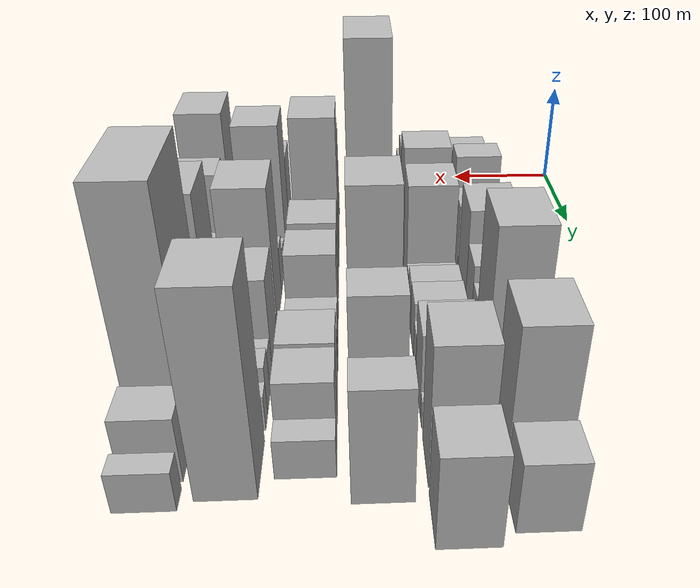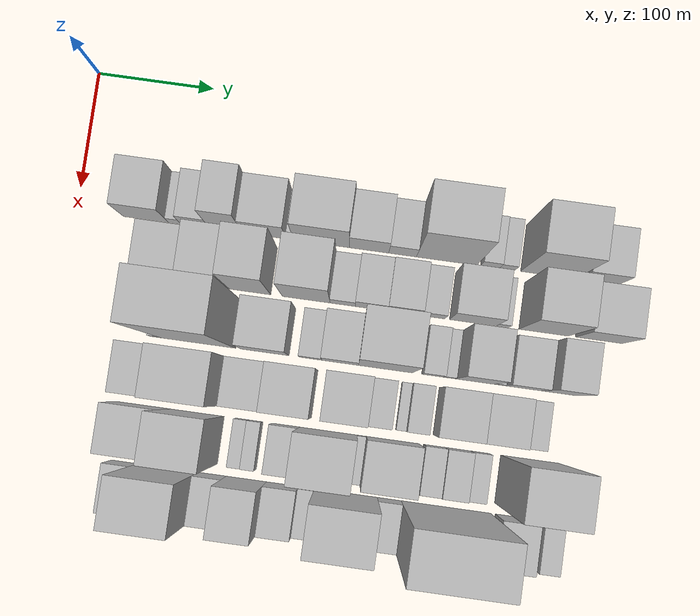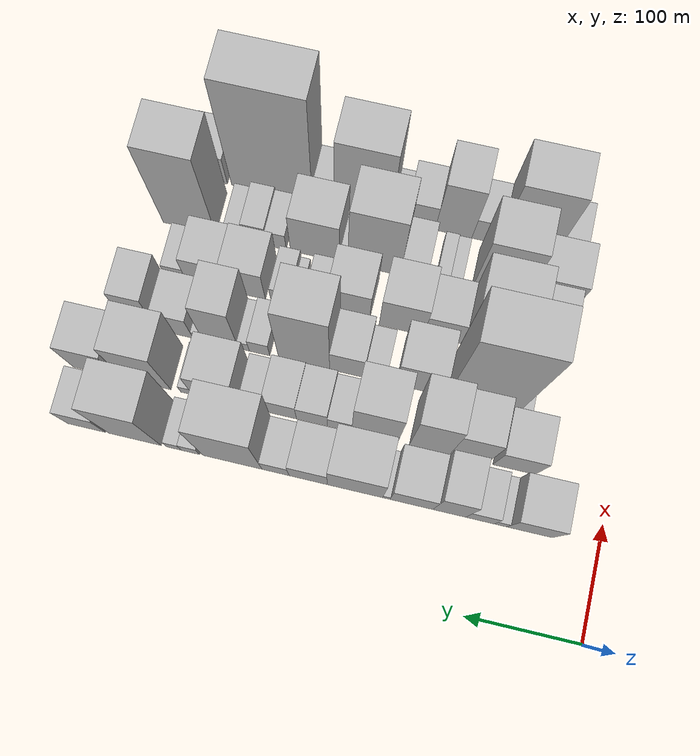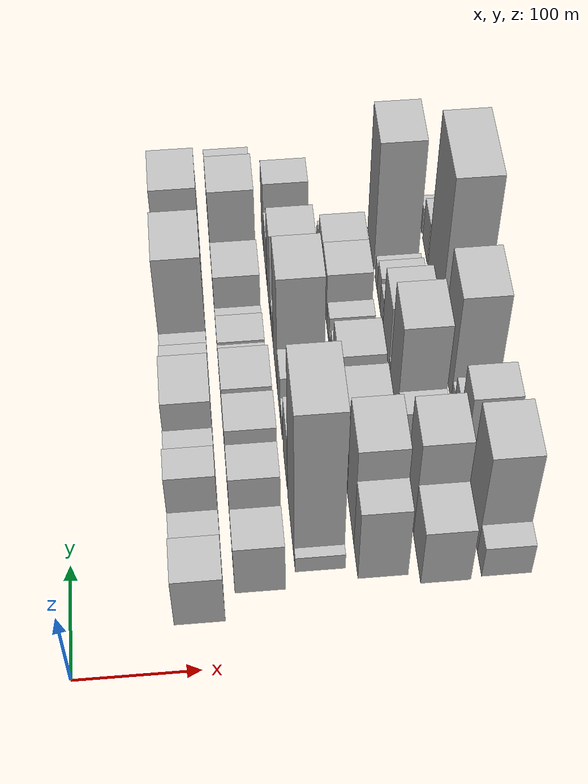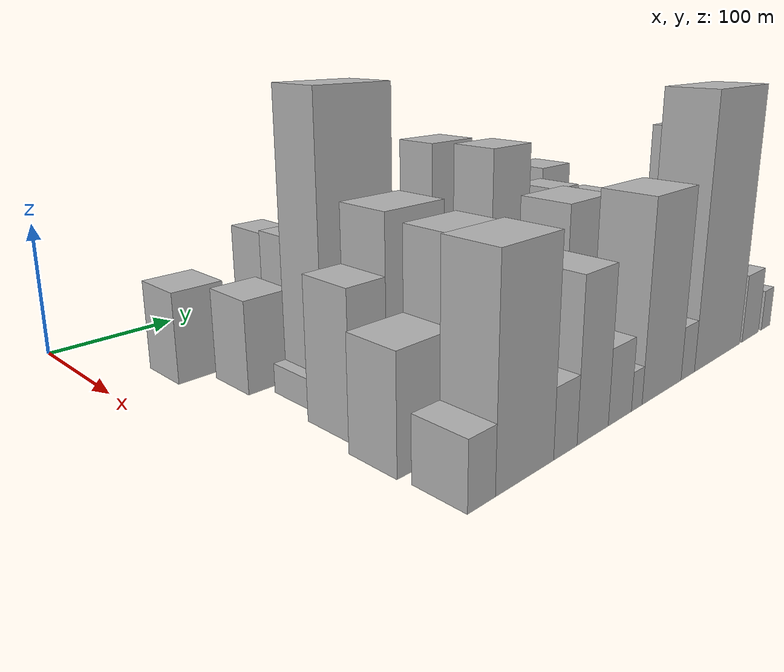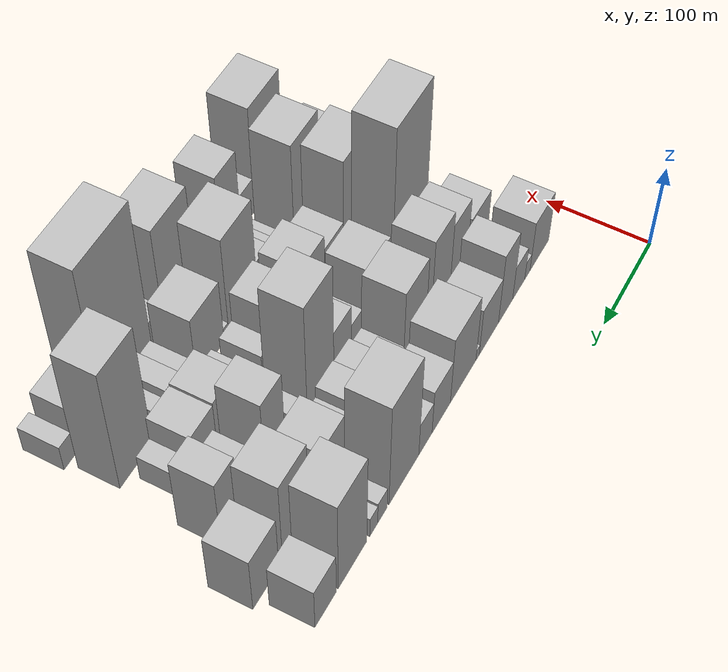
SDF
<sdf version="1.6">
 <world name="default">
  <model name="building_29">
   <static>1</static>
   <pose>100.0000 59.5976 0 0.000000 0.000000 0.000000</pose>
   <link name="link">
    <pose>0 0 33.00 0 0 0</pose>
    <collision name="collision"><geometry><box><size>40.0000 39.1133 66.0000</size></box></geometry></collision>
    <visual name="visual">
     <cast_shadows>0</cast_shadows>
     <geometry><box><size>40.0000 39.1133 66.0000</size></box></geometry>
     <material>
      <script>
       <uri>model://HANNAS_wall/materials/scripts</uri>
       <uri>model://HANNAS_wall/materials/textures</uri>
       <name>vrc/HANNAS_wall</name>
      </script>
     </material>
    </visual>
   </link>
  </model>
  <model name="building_30">
   <static>1</static>
   <pose>100.0000 84.5505 0 0.000000 0.000000 0.000000</pose>
   <link name="link">
    <pose>0 0 12.00 0 0 0</pose>
    <collision name="collision"><geometry><box><size>40.0000 10.7926 24.0000</size></box></geometry></collision>
    <visual name="visual">
     <cast_shadows>0</cast_shadows>
     <geometry><box><size>40.0000 10.7926 24.0000</size></box></geometry>
     <material>
      <script>
       <uri>model://HANNAS_wall/materials/scripts</uri>
       <uri>model://HANNAS_wall/materials/textures</uri>
       <name>vrc/HANNAS_wall</name>
      </script>
     </material>
    </visual>
   </link>
  </model>
  <model name="building_31">
   <static>1</static>
   <pose>100.0000 102.2200 0 0.000000 0.000000 0.000000</pose>
   <link name="link">
    <pose>0 0 22.50 0 0 0</pose>
    <collision name="collision"><geometry><box><size>40.0000 24.5463 45.0000</size></box></geometry></collision>
    <visual name="visual">
     <cast_shadows>0</cast_shadows>
     <geometry><box><size>40.0000 24.5463 45.0000</size></box></geometry>
     <material>
      <script>
       <uri>model://HANNAS_wall/materials/scripts</uri>
       <uri>model://HANNAS_wall/materials/textures</uri>
       <name>vrc/HANNAS_wall</name>
      </script>
     </material>
    </visual>
   </link>
  </model>
  <model name="building_32">
   <static>1</static>
   <pose>100.0000 128.6464 0 0.000000 0.000000 0.000000</pose>
   <link name="link">
    <pose>0 0 46.50 0 0 0</pose>
    <collision name="collision"><geometry><box><size>40.0000 28.3064 93.0000</size></box></geometry></collision>
    <visual name="visual">
     <cast_shadows>0</cast_shadows>
     <geometry><box><size>40.0000 28.3064 93.0000</size></box></geometry>
     <material>
      <script>
       <uri>model://HANNAS_wall/materials/scripts</uri>
       <uri>model://HANNAS_wall/materials/textures</uri>
       <name>vrc/HANNAS_wall</name>
      </script>
     </material>
    </visual>
   </link>
  </model>
  <model name="building_33">
   <static>1</static>
   <pose>100.0000 161.4105 0 0.000000 0.000000 0.000000</pose>
   <link name="link">
    <pose>0 0 31.50 0 0 0</pose>
    <collision name="collision"><geometry><box><size>40.0000 37.2217 63.0000</size></box></geometry></collision>
    <visual name="visual">
     <cast_shadows>0</cast_shadows>
     <geometry><box><size>40.0000 37.2217 63.0000</size></box></geometry>
     <material>
      <script>
       <uri>model://HANNAS_wall/materials/scripts</uri>
       <uri>model://HANNAS_wall/materials/textures</uri>
       <name>vrc/HANNAS_wall</name>
      </script>
     </material>
    </visual>
   </link>
  </model>
  <model name="building_34">
   <static>1</static>
   <pose>100.0000 183.2729 0 0.000000 0.000000 0.000000</pose>
   <link name="link">
    <pose>0 0 7.50 0 0 0</pose>
    <collision name="collision"><geometry><box><size>40.0000 6.5032 15.0000</size></box></geometry></collision>
    <visual name="visual">
     <cast_shadows>0</cast_shadows>
     <geometry><box><size>40.0000 6.5032 15.0000</size></box></geometry>
     <material>
      <script>
       <uri>model://HANNAS_wall/materials/scripts</uri>
       <uri>model://HANNAS_wall/materials/textures</uri>
       <name>vrc/HANNAS_wall</name>
      </script>
     </material>
    </visual>
   </link>
  </model>
  <model name="building_35">
   <static>1</static>
   <pose>100.0000 210.5609 0 0.000000 0.000000 0.000000</pose>
   <link name="link">
    <pose>0 0 45.00 0 0 0</pose>
    <collision name="collision"><geometry><box><size>40.0000 48.0727 90.0000</size></box></geometry></collision>
    <visual name="visual">
     <cast_shadows>0</cast_shadows>
     <geometry><box><size>40.0000 48.0727 90.0000</size></box></geometry>
     <material>
      <script>
       <uri>model://HANNAS_wall/materials/scripts</uri>
       <uri>model://HANNAS_wall/materials/textures</uri>
       <name>vrc/HANNAS_wall</name>
      </script>
     </material>
    </visual>
   </link>
  </model>
  <model name="building_36">
   <static>1</static>
   <pose>100.0000 251.3579 0 0.000000 0.000000 0.000000</pose>
   <link name="link">
    <pose>0 0 30.00 0 0 0</pose>
    <collision name="collision"><geometry><box><size>40.0000 33.5214 60.0000</size></box></geometry></collision>
    <visual name="visual">
     <cast_shadows>0</cast_shadows>
     <geometry><box><size>40.0000 33.5214 60.0000</size></box></geometry>
     <material>
      <script>
       <uri>model://HANNAS_wall/materials/scripts</uri>
       <uri>model://HANNAS_wall/materials/textures</uri>
       <name>vrc/HANNAS_wall</name>
      </script>
     </material>
    </visual>
   </link>
  </model>
  <model name="building_37">
   <static>1</static>
   <pose>100.0000 279.9803 0 0.000000 0.000000 0.000000</pose>
   <link name="link">
    <pose>0 0 22.50 0 0 0</pose>
    <collision name="collision"><geometry><box><size>40.0000 23.7235 45.0000</size></box></geometry></collision>
    <visual name="visual">
     <cast_shadows>0</cast_shadows>
     <geometry><box><size>40.0000 23.7235 45.0000</size></box></geometry>
     <material>
      <script>
       <uri>model://HANNAS_wall/materials/scripts</uri>
       <uri>model://HANNAS_wall/materials/textures</uri>
       <name>vrc/HANNAS_wall</name>
      </script>
     </material>
    </visual>
   </link>
  </model>
  <model name="building_38">
   <static>1</static>
   <pose>100.0000 317.8048 0 0.000000 0.000000 0.000000</pose>
   <link name="link">
    <pose>0 0 70.50 0 0 0</pose>
    <collision name="collision"><geometry><box><size>40.0000 51.9255 141.0000</size></box></geometry></collision>
    <visual name="visual">
     <cast_shadows>0</cast_shadows>
     <geometry><box><size>40.0000 51.9255 141.0000</size></box></geometry>
     <material>
      <script>
       <uri>model://HANNAS_wall/materials/scripts</uri>
       <uri>model://HANNAS_wall/materials/textures</uri>
       <name>vrc/HANNAS_wall</name>
      </script>
     </material>
    </visual>
   </link>
  </model>
  <model name="building_39">
   <static>1</static>
   <pose>100.0000 354.8430 0 0.000000 0.000000 0.000000</pose>
   <link name="link">
    <pose>0 0 15.00 0 0 0</pose>
    <collision name="collision"><geometry><box><size>40.0000 16.1508 30.0000</size></box></geometry></collision>
    <visual name="visual">
     <cast_shadows>0</cast_shadows>
     <geometry><box><size>40.0000 16.1508 30.0000</size></box></geometry>
     <material>
      <script>
       <uri>model://HANNAS_wall/materials/scripts</uri>
       <uri>model://HANNAS_wall/materials/textures</uri>
       <name>vrc/HANNAS_wall</name>
      </script>
     </material>
    </visual>
   </link>
  </model>
  <model name="building_40">
   <static>1</static>
   <pose>100.0000 369.5333 0 0.000000 0.000000 0.000000</pose>
   <link name="link">
    <pose>0 0 13.50 0 0 0</pose>
    <collision name="collision"><geometry><box><size>40.0000 13.2298 27.0000</size></box></geometry></collision>
    <visual name="visual">
     <cast_shadows>0</cast_shadows>
     <geometry><box><size>40.0000 13.2298 27.0000</size></box></geometry>
     <material>
      <script>
       <uri>model://HANNAS_wall/materials/scripts</uri>
       <uri>model://HANNAS_wall/materials/textures</uri>
       <name>vrc/HANNAS_wall</name>
      </script>
     </material>
    </visual>
   </link>
  </model>
  <model name="building_41">
   <static>1</static>
   <pose>100.0000 404.4747 0 0.000000 0.000000 0.000000</pose>
   <link name="link">
    <pose>0 0 63.00 0 0 0</pose>
    <collision name="collision"><geometry><box><size>40.0000 46.6530 126.0000</size></box></geometry></collision>
    <visual name="visual">
     <cast_shadows>0</cast_shadows>
     <geometry><box><size>40.0000 46.6530 126.0000</size></box></geometry>
     <material>
      <script>
       <uri>model://HANNAS_wall/materials/scripts</uri>
       <uri>model://HANNAS_wall/materials/textures</uri>
       <name>vrc/HANNAS_wall</name>
      </script>
     </material>
    </visual>
   </link>
  </model>
  <model name="building_42">
   <static>1</static>
   <pose>100.0000 447.7379 0 0.000000 0.000000 0.000000</pose>
   <link name="link">
    <pose>0 0 28.50 0 0 0</pose>
    <collision name="collision"><geometry><box><size>40.0000 33.8734 57.0000</size></box></geometry></collision>
    <visual name="visual">
     <cast_shadows>0</cast_shadows>
     <geometry><box><size>40.0000 33.8734 57.0000</size></box></geometry>
     <material>
      <script>
       <uri>model://HANNAS_wall/materials/scripts</uri>
       <uri>model://HANNAS_wall/materials/textures</uri>
       <name>vrc/HANNAS_wall</name>
      </script>
     </material>
    </visual>
   </link>
  </model>
  <model name="building_74">
   <static>1</static>
   <pose>149.0000 82.3184 0 0.000000 0.000000 0.000000</pose>
   <link name="link">
    <pose>0 0 33.00 0 0 0</pose>
    <collision name="collision"><geometry><box><size>40.0000 36.8420 66.0000</size></box></geometry></collision>
    <visual name="visual">
     <cast_shadows>0</cast_shadows>
     <geometry><box><size>40.0000 36.8420 66.0000</size></box></geometry>
     <material>
      <script>
       <uri>model://HANNAS_wall/materials/scripts</uri>
       <uri>model://HANNAS_wall/materials/textures</uri>
       <name>vrc/HANNAS_wall</name>
      </script>
     </material>
    </visual>
   </link>
  </model>
  <model name="building_75">
   <static>1</static>
   <pose>149.0000 122.0918 0 0.000000 0.000000 0.000000</pose>
   <link name="link">
    <pose>0 0 49.50 0 0 0</pose>
    <collision name="collision"><geometry><box><size>40.0000 32.7048 99.0000</size></box></geometry></collision>
    <visual name="visual">
     <cast_shadows>0</cast_shadows>
     <geometry><box><size>40.0000 32.7048 99.0000</size></box></geometry>
     <material>
      <script>
       <uri>model://HANNAS_wall/materials/scripts</uri>
       <uri>model://HANNAS_wall/materials/textures</uri>
       <name>vrc/HANNAS_wall</name>
      </script>
     </material>
    </visual>
   </link>
  </model>
  <model name="building_76">
   <static>1</static>
   <pose>149.0000 156.2062 0 0.000000 0.000000 0.000000</pose>
   <link name="link">
    <pose>0 0 58.50 0 0 0</pose>
    <collision name="collision"><geometry><box><size>40.0000 35.5240 117.0000</size></box></geometry></collision>
    <visual name="visual">
     <cast_shadows>0</cast_shadows>
     <geometry><box><size>40.0000 35.5240 117.0000</size></box></geometry>
     <material>
      <script>
       <uri>model://HANNAS_wall/materials/scripts</uri>
       <uri>model://HANNAS_wall/materials/textures</uri>
       <name>vrc/HANNAS_wall</name>
      </script>
     </material>
    </visual>
   </link>
  </model>
  <model name="building_77">
   <static>1</static>
   <pose>149.0000 204.3954 0 0.000000 0.000000 0.000000</pose>
   <link name="link">
    <pose>0 0 54.00 0 0 0</pose>
    <collision name="collision"><geometry><box><size>40.0000 40.8544 108.0000</size></box></geometry></collision>
    <visual name="visual">
     <cast_shadows>0</cast_shadows>
     <geometry><box><size>40.0000 40.8544 108.0000</size></box></geometry>
     <material>
      <script>
       <uri>model://HANNAS_wall/materials/scripts</uri>
       <uri>model://HANNAS_wall/materials/textures</uri>
       <name>vrc/HANNAS_wall</name>
      </script>
     </material>
    </visual>
   </link>
  </model>
  <model name="building_78">
   <static>1</static>
   <pose>149.0000 235.4901 0 0.000000 0.000000 0.000000</pose>
   <link name="link">
    <pose>0 0 18.00 0 0 0</pose>
    <collision name="collision"><geometry><box><size>40.0000 21.3351 36.0000</size></box></geometry></collision>
    <visual name="visual">
     <cast_shadows>0</cast_shadows>
     <geometry><box><size>40.0000 21.3351 36.0000</size></box></geometry>
     <material>
      <script>
       <uri>model://HANNAS_wall/materials/scripts</uri>
       <uri>model://HANNAS_wall/materials/textures</uri>
       <name>vrc/HANNAS_wall</name>
      </script>
     </material>
    </visual>
   </link>
  </model>
  <model name="building_79">
   <static>1</static>
   <pose>149.0000 259.8163 0 0.000000 0.000000 0.000000</pose>
   <link name="link">
    <pose>0 0 24.00 0 0 0</pose>
    <collision name="collision"><geometry><box><size>40.0000 27.3173 48.0000</size></box></geometry></collision>
    <visual name="visual">
     <cast_shadows>0</cast_shadows>
     <geometry><box><size>40.0000 27.3173 48.0000</size></box></geometry>
     <material>
      <script>
       <uri>model://HANNAS_wall/materials/scripts</uri>
       <uri>model://HANNAS_wall/materials/textures</uri>
       <name>vrc/HANNAS_wall</name>
      </script>
     </material>
    </visual>
   </link>
  </model>
  <model name="building_80">
   <static>1</static>
   <pose>149.0000 288.0361 0 0.000000 0.000000 0.000000</pose>
   <link name="link">
    <pose>0 0 25.50 0 0 0</pose>
    <collision name="collision"><geometry><box><size>40.0000 29.1224 51.0000</size></box></geometry></collision>
    <visual name="visual">
     <cast_shadows>0</cast_shadows>
     <geometry><box><size>40.0000 29.1224 51.0000</size></box></geometry>
     <material>
      <script>
       <uri>model://HANNAS_wall/materials/scripts</uri>
       <uri>model://HANNAS_wall/materials/textures</uri>
       <name>vrc/HANNAS_wall</name>
      </script>
     </material>
    </visual>
   </link>
  </model>
  <model name="building_81">
   <static>1</static>
   <pose>149.0000 312.6540 0 0.000000 0.000000 0.000000</pose>
   <link name="link">
    <pose>0 0 18.00 0 0 0</pose>
    <collision name="collision"><geometry><box><size>40.0000 20.1134 36.0000</size></box></geometry></collision>
    <visual name="visual">
     <cast_shadows>0</cast_shadows>
     <geometry><box><size>40.0000 20.1134 36.0000</size></box></geometry>
     <material>
      <script>
       <uri>model://HANNAS_wall/materials/scripts</uri>
       <uri>model://HANNAS_wall/materials/textures</uri>
       <name>vrc/HANNAS_wall</name>
      </script>
     </material>
    </visual>
   </link>
  </model>
  <model name="building_82">
   <static>1</static>
   <pose>149.0000 346.6049 0 0.000000 0.000000 0.000000</pose>
   <link name="link">
    <pose>0 0 36.00 0 0 0</pose>
    <collision name="collision"><geometry><box><size>40.0000 39.7886 72.0000</size></box></geometry></collision>
    <visual name="visual">
     <cast_shadows>0</cast_shadows>
     <geometry><box><size>40.0000 39.7886 72.0000</size></box></geometry>
     <material>
      <script>
       <uri>model://HANNAS_wall/materials/scripts</uri>
       <uri>model://HANNAS_wall/materials/textures</uri>
       <name>vrc/HANNAS_wall</name>
      </script>
     </material>
    </visual>
   </link>
  </model>
  <model name="building_83">
   <static>1</static>
   <pose>149.0000 371.6629 0 0.000000 0.000000 0.000000</pose>
   <link name="link">
    <pose>0 0 12.00 0 0 0</pose>
    <collision name="collision"><geometry><box><size>40.0000 10.3274 24.0000</size></box></geometry></collision>
    <visual name="visual">
     <cast_shadows>0</cast_shadows>
     <geometry><box><size>40.0000 10.3274 24.0000</size></box></geometry>
     <material>
      <script>
       <uri>model://HANNAS_wall/materials/scripts</uri>
       <uri>model://HANNAS_wall/materials/textures</uri>
       <name>vrc/HANNAS_wall</name>
      </script>
     </material>
    </visual>
   </link>
  </model>
  <model name="building_84">
   <static>1</static>
   <pose>149.0000 406.9753 0 0.000000 0.000000 0.000000</pose>
   <link name="link">
    <pose>0 0 57.00 0 0 0</pose>
    <collision name="collision"><geometry><box><size>40.0000 42.2972 114.0000</size></box></geometry></collision>
    <visual name="visual">
     <cast_shadows>0</cast_shadows>
     <geometry><box><size>40.0000 42.2972 114.0000</size></box></geometry>
     <material>
      <script>
       <uri>model://HANNAS_wall/materials/scripts</uri>
       <uri>model://HANNAS_wall/materials/textures</uri>
       <name>vrc/HANNAS_wall</name>
      </script>
     </material>
    </visual>
   </link>
  </model>
  <model name="building_85">
   <static>1</static>
   <pose>149.0000 454.0752 0 0.000000 0.000000 0.000000</pose>
   <link name="link">
    <pose>0 0 37.50 0 0 0</pose>
    <collision name="collision"><geometry><box><size>40.0000 39.9026 75.0000</size></box></geometry></collision>
    <visual name="visual">
     <cast_shadows>0</cast_shadows>
     <geometry><box><size>40.0000 39.9026 75.0000</size></box></geometry>
     <material>
      <script>
       <uri>model://HANNAS_wall/materials/scripts</uri>
       <uri>model://HANNAS_wall/materials/textures</uri>
       <name>vrc/HANNAS_wall</name>
      </script>
     </material>
    </visual>
   </link>
  </model>
  <model name="building_123">
   <static>1</static>
   <pose>198.0000 83.4338 0 0.000000 0.000000 0.000000</pose>
   <link name="link">
    <pose>0 0 10.50 0 0 0</pose>
    <collision name="collision"><geometry><box><size>40.0000 9.5954 21.0000</size></box></geometry></collision>
    <visual name="visual">
     <cast_shadows>0</cast_shadows>
     <geometry><box><size>40.0000 9.5954 21.0000</size></box></geometry>
     <material>
      <script>
       <uri>model://HANNAS_wall/materials/scripts</uri>
       <uri>model://HANNAS_wall/materials/textures</uri>
       <name>vrc/HANNAS_wall</name>
      </script>
     </material>
    </visual>
   </link>
  </model>
  <model name="building_124">
   <static>1</static>
   <pose>198.0000 119.6857 0 0.000000 0.000000 0.000000</pose>
   <link name="link">
    <pose>0 0 102.00 0 0 0</pose>
    <collision name="collision"><geometry><box><size>40.0000 62.9084 204.0000</size></box></geometry></collision>
    <visual name="visual">
     <cast_shadows>0</cast_shadows>
     <geometry><box><size>40.0000 62.9084 204.0000</size></box></geometry>
     <material>
      <script>
       <uri>model://HANNAS_wall/materials/scripts</uri>
       <uri>model://HANNAS_wall/materials/textures</uri>
       <name>vrc/HANNAS_wall</name>
      </script>
     </material>
    </visual>
   </link>
  </model>
  <model name="building_125">
   <static>1</static>
   <pose>198.0000 176.4149 0 0.000000 0.000000 0.000000</pose>
   <link name="link">
    <pose>0 0 37.50 0 0 0</pose>
    <collision name="collision"><geometry><box><size>40.0000 40.5501 75.0000</size></box></geometry></collision>
    <visual name="visual">
     <cast_shadows>0</cast_shadows>
     <geometry><box><size>40.0000 40.5501 75.0000</size></box></geometry>
     <material>
      <script>
       <uri>model://HANNAS_wall/materials/scripts</uri>
       <uri>model://HANNAS_wall/materials/textures</uri>
       <name>vrc/HANNAS_wall</name>
      </script>
     </material>
    </visual>
   </link>
  </model>
  <model name="building_126">
   <static>1</static>
   <pose>198.0000 215.2739 0 0.000000 0.000000 0.000000</pose>
   <link name="link">
    <pose>0 0 16.50 0 0 0</pose>
    <collision name="collision"><geometry><box><size>40.0000 19.1679 33.0000</size></box></geometry></collision>
    <visual name="visual">
     <cast_shadows>0</cast_shadows>
     <geometry><box><size>40.0000 19.1679 33.0000</size></box></geometry>
     <material>
      <script>
       <uri>model://HANNAS_wall/materials/scripts</uri>
       <uri>model://HANNAS_wall/materials/textures</uri>
       <name>vrc/HANNAS_wall</name>
      </script>
     </material>
    </visual>
   </link>
  </model>
  <model name="building_127">
   <static>1</static>
   <pose>198.0000 240.3359 0 0.000000 0.000000 0.000000</pose>
   <link name="link">
    <pose>0 0 30.00 0 0 0</pose>
    <collision name="collision"><geometry><box><size>40.0000 30.9561 60.0000</size></box></geometry></collision>
    <visual name="visual">
     <cast_shadows>0</cast_shadows>
     <geometry><box><size>40.0000 30.9561 60.0000</size></box></geometry>
     <material>
      <script>
       <uri>model://HANNAS_wall/materials/scripts</uri>
       <uri>model://HANNAS_wall/materials/textures</uri>
       <name>vrc/HANNAS_wall</name>
      </script>
     </material>
    </visual>
   </link>
  </model>
  <model name="building_128">
   <static>1</static>
   <pose>198.0000 278.6460 0 0.000000 0.000000 0.000000</pose>
   <link name="link">
    <pose>0 0 75.00 0 0 0</pose>
    <collision name="collision"><geometry><box><size>40.0000 45.6641 150.0000</size></box></geometry></collision>
    <visual name="visual">
     <cast_shadows>0</cast_shadows>
     <geometry><box><size>40.0000 45.6641 150.0000</size></box></geometry>
     <material>
      <script>
       <uri>model://HANNAS_wall/materials/scripts</uri>
       <uri>model://HANNAS_wall/materials/textures</uri>
       <name>vrc/HANNAS_wall</name>
      </script>
     </material>
    </visual>
   </link>
  </model>
  <model name="building_129">
   <static>1</static>
   <pose>198.0000 318.6688 0 0.000000 0.000000 0.000000</pose>
   <link name="link">
    <pose>0 0 18.00 0 0 0</pose>
    <collision name="collision"><geometry><box><size>40.0000 18.3814 36.0000</size></box></geometry></collision>
    <visual name="visual">
     <cast_shadows>0</cast_shadows>
     <geometry><box><size>40.0000 18.3814 36.0000</size></box></geometry>
     <material>
      <script>
       <uri>model://HANNAS_wall/materials/scripts</uri>
       <uri>model://HANNAS_wall/materials/textures</uri>
       <name>vrc/HANNAS_wall</name>
      </script>
     </material>
    </visual>
   </link>
  </model>
  <model name="building_130">
   <static>1</static>
   <pose>198.0000 332.7410 0 0.000000 0.000000 0.000000</pose>
   <link name="link">
    <pose>0 0 12.00 0 0 0</pose>
    <collision name="collision"><geometry><box><size>40.0000 9.7630 24.0000</size></box></geometry></collision>
    <visual name="visual">
     <cast_shadows>0</cast_shadows>
     <geometry><box><size>40.0000 9.7630 24.0000</size></box></geometry>
     <material>
      <script>
       <uri>model://HANNAS_wall/materials/scripts</uri>
       <uri>model://HANNAS_wall/materials/textures</uri>
       <name>vrc/HANNAS_wall</name>
      </script>
     </material>
    </visual>
   </link>
  </model>
  <model name="building_131">
   <static>1</static>
   <pose>198.0000 353.8772 0 0.000000 0.000000 0.000000</pose>
   <link name="link">
    <pose>0 0 54.00 0 0 0</pose>
    <collision name="collision"><geometry><box><size>40.0000 32.5094 108.0000</size></box></geometry></collision>
    <visual name="visual">
     <cast_shadows>0</cast_shadows>
     <geometry><box><size>40.0000 32.5094 108.0000</size></box></geometry>
     <material>
      <script>
       <uri>model://HANNAS_wall/materials/scripts</uri>
       <uri>model://HANNAS_wall/materials/textures</uri>
       <name>vrc/HANNAS_wall</name>
      </script>
     </material>
    </visual>
   </link>
  </model>
  <model name="building_132">
   <static>1</static>
   <pose>198.0000 374.6081 0 0.000000 0.000000 0.000000</pose>
   <link name="link">
    <pose>0 0 10.50 0 0 0</pose>
    <collision name="collision"><geometry><box><size>40.0000 8.9524 21.0000</size></box></geometry></collision>
    <visual name="visual">
     <cast_shadows>0</cast_shadows>
     <geometry><box><size>40.0000 8.9524 21.0000</size></box></geometry>
     <material>
      <script>
       <uri>model://HANNAS_wall/materials/scripts</uri>
       <uri>model://HANNAS_wall/materials/textures</uri>
       <name>vrc/HANNAS_wall</name>
      </script>
     </material>
    </visual>
   </link>
  </model>
  <model name="building_133">
   <static>1</static>
   <pose>198.0000 394.7956 0 0.000000 0.000000 0.000000</pose>
   <link name="link">
    <pose>0 0 28.50 0 0 0</pose>
    <collision name="collision"><geometry><box><size>40.0000 31.4226 57.0000</size></box></geometry></collision>
    <visual name="visual">
     <cast_shadows>0</cast_shadows>
     <geometry><box><size>40.0000 31.4226 57.0000</size></box></geometry>
     <material>
      <script>
       <uri>model://HANNAS_wall/materials/scripts</uri>
       <uri>model://HANNAS_wall/materials/textures</uri>
       <name>vrc/HANNAS_wall</name>
      </script>
     </material>
    </visual>
   </link>
  </model>
  <model name="building_134">
   <static>1</static>
   <pose>198.0000 424.8465 0 0.000000 0.000000 0.000000</pose>
   <link name="link">
    <pose>0 0 46.50 0 0 0</pose>
    <collision name="collision"><geometry><box><size>40.0000 28.6794 93.0000</size></box></geometry></collision>
    <visual name="visual">
     <cast_shadows>0</cast_shadows>
     <geometry><box><size>40.0000 28.6794 93.0000</size></box></geometry>
     <material>
      <script>
       <uri>model://HANNAS_wall/materials/scripts</uri>
       <uri>model://HANNAS_wall/materials/textures</uri>
       <name>vrc/HANNAS_wall</name>
      </script>
     </material>
    </visual>
   </link>
  </model>
  <model name="building_171">
   <static>1</static>
   <pose>247.0000 83.4809 0 0.000000 0.000000 0.000000</pose>
   <link name="link">
    <pose>0 0 48.00 0 0 0</pose>
    <collision name="collision"><geometry><box><size>40.0000 30.1527 96.0000</size></box></geometry></collision>
    <visual name="visual">
     <cast_shadows>0</cast_shadows>
     <geometry><box><size>40.0000 30.1527 96.0000</size></box></geometry>
     <material>
      <script>
       <uri>model://HANNAS_wall/materials/scripts</uri>
       <uri>model://HANNAS_wall/materials/textures</uri>
       <name>vrc/HANNAS_wall</name>
      </script>
     </material>
    </visual>
   </link>
  </model>
  <model name="building_172">
   <static>1</static>
   <pose>247.0000 123.6661 0 0.000000 0.000000 0.000000</pose>
   <link name="link">
    <pose>0 0 67.50 0 0 0</pose>
    <collision name="collision"><geometry><box><size>40.0000 50.2179 135.0000</size></box></geometry></collision>
    <visual name="visual">
     <cast_shadows>0</cast_shadows>
     <geometry><box><size>40.0000 50.2179 135.0000</size></box></geometry>
     <material>
      <script>
       <uri>model://HANNAS_wall/materials/scripts</uri>
       <uri>model://HANNAS_wall/materials/textures</uri>
       <name>vrc/HANNAS_wall</name>
      </script>
     </material>
    </visual>
   </link>
  </model>
  <model name="building_173">
   <static>1</static>
   <pose>247.0000 165.4822 0 0.000000 0.000000 0.000000</pose>
   <link name="link">
    <pose>0 0 28.50 0 0 0</pose>
    <collision name="collision"><geometry><box><size>40.0000 33.4143 57.0000</size></box></geometry></collision>
    <visual name="visual">
     <cast_shadows>0</cast_shadows>
     <geometry><box><size>40.0000 33.4143 57.0000</size></box></geometry>
     <material>
      <script>
       <uri>model://HANNAS_wall/materials/scripts</uri>
       <uri>model://HANNAS_wall/materials/textures</uri>
       <name>vrc/HANNAS_wall</name>
      </script>
     </material>
    </visual>
   </link>
  </model>
  <model name="building_174">
   <static>1</static>
   <pose>247.0000 202.4006 0 0.000000 0.000000 0.000000</pose>
   <link name="link">
    <pose>0 0 37.50 0 0 0</pose>
    <collision name="collision"><geometry><box><size>40.0000 40.4224 75.0000</size></box></geometry></collision>
    <visual name="visual">
     <cast_shadows>0</cast_shadows>
     <geometry><box><size>40.0000 40.4224 75.0000</size></box></geometry>
     <material>
      <script>
       <uri>model://HANNAS_wall/materials/scripts</uri>
       <uri>model://HANNAS_wall/materials/textures</uri>
       <name>vrc/HANNAS_wall</name>
      </script>
     </material>
    </visual>
   </link>
  </model>
  <model name="building_175">
   <static>1</static>
   <pose>247.0000 250.6178 0 0.000000 0.000000 0.000000</pose>
   <link name="link">
    <pose>0 0 37.50 0 0 0</pose>
    <collision name="collision"><geometry><box><size>40.0000 38.0121 75.0000</size></box></geometry></collision>
    <visual name="visual">
     <cast_shadows>0</cast_shadows>
     <geometry><box><size>40.0000 38.0121 75.0000</size></box></geometry>
     <material>
      <script>
       <uri>model://HANNAS_wall/materials/scripts</uri>
       <uri>model://HANNAS_wall/materials/textures</uri>
       <name>vrc/HANNAS_wall</name>
      </script>
     </material>
    </visual>
   </link>
  </model>
  <model name="building_176">
   <static>1</static>
   <pose>247.0000 279.7739 0 0.000000 0.000000 0.000000</pose>
   <link name="link">
    <pose>0 0 18.00 0 0 0</pose>
    <collision name="collision"><geometry><box><size>40.0000 20.3001 36.0000</size></box></geometry></collision>
    <visual name="visual">
     <cast_shadows>0</cast_shadows>
     <geometry><box><size>40.0000 20.3001 36.0000</size></box></geometry>
     <material>
      <script>
       <uri>model://HANNAS_wall/materials/scripts</uri>
       <uri>model://HANNAS_wall/materials/textures</uri>
       <name>vrc/HANNAS_wall</name>
      </script>
     </material>
    </visual>
   </link>
  </model>
  <model name="building_177">
   <static>1</static>
   <pose>247.0000 298.1637 0 0.000000 0.000000 0.000000</pose>
   <link name="link">
    <pose>0 0 9.00 0 0 0</pose>
    <collision name="collision"><geometry><box><size>40.0000 8.4794 18.0000</size></box></geometry></collision>
    <visual name="visual">
     <cast_shadows>0</cast_shadows>
     <geometry><box><size>40.0000 8.4794 18.0000</size></box></geometry>
     <material>
      <script>
       <uri>model://HANNAS_wall/materials/scripts</uri>
       <uri>model://HANNAS_wall/materials/textures</uri>
       <name>vrc/HANNAS_wall</name>
      </script>
     </material>
    </visual>
   </link>
  </model>
  <model name="building_178">
   <static>1</static>
   <pose>247.0000 311.5621 0 0.000000 0.000000 0.000000</pose>
   <link name="link">
    <pose>0 0 18.00 0 0 0</pose>
    <collision name="collision"><geometry><box><size>40.0000 18.3175 36.0000</size></box></geometry></collision>
    <visual name="visual">
     <cast_shadows>0</cast_shadows>
     <geometry><box><size>40.0000 18.3175 36.0000</size></box></geometry>
     <material>
      <script>
       <uri>model://HANNAS_wall/materials/scripts</uri>
       <uri>model://HANNAS_wall/materials/textures</uri>
       <name>vrc/HANNAS_wall</name>
      </script>
     </material>
    </visual>
   </link>
  </model>
  <model name="building_179">
   <static>1</static>
   <pose>247.0000 344.5438 0 0.000000 0.000000 0.000000</pose>
   <link name="link">
    <pose>0 0 33.00 0 0 0</pose>
    <collision name="collision"><geometry><box><size>40.0000 37.6457 66.0000</size></box></geometry></collision>
    <visual name="visual">
     <cast_shadows>0</cast_shadows>
     <geometry><box><size>40.0000 37.6457 66.0000</size></box></geometry>
     <material>
      <script>
       <uri>model://HANNAS_wall/materials/scripts</uri>
       <uri>model://HANNAS_wall/materials/textures</uri>
       <name>vrc/HANNAS_wall</name>
      </script>
     </material>
    </visual>
   </link>
  </model>
  <model name="building_180">
   <static>1</static>
   <pose>247.0000 380.7230 0 0.000000 0.000000 0.000000</pose>
   <link name="link">
    <pose>0 0 31.50 0 0 0</pose>
    <collision name="collision"><geometry><box><size>40.0000 34.7127 63.0000</size></box></geometry></collision>
    <visual name="visual">
     <cast_shadows>0</cast_shadows>
     <geometry><box><size>40.0000 34.7127 63.0000</size></box></geometry>
     <material>
      <script>
       <uri>model://HANNAS_wall/materials/scripts</uri>
       <uri>model://HANNAS_wall/materials/textures</uri>
       <name>vrc/HANNAS_wall</name>
      </script>
     </material>
    </visual>
   </link>
  </model>
  <model name="building_181">
   <static>1</static>
   <pose>247.0000 407.7405 0 0.000000 0.000000 0.000000</pose>
   <link name="link">
    <pose>0 0 16.50 0 0 0</pose>
    <collision name="collision"><geometry><box><size>40.0000 19.3224 33.0000</size></box></geometry></collision>
    <visual name="visual">
     <cast_shadows>0</cast_shadows>
     <geometry><box><size>40.0000 19.3224 33.0000</size></box></geometry>
     <material>
      <script>
       <uri>model://HANNAS_wall/materials/scripts</uri>
       <uri>model://HANNAS_wall/materials/textures</uri>
       <name>vrc/HANNAS_wall</name>
      </script>
     </material>
    </visual>
   </link>
  </model>
  <model name="building_217">
   <static>1</static>
   <pose>296.0000 81.9464 0 0.000000 0.000000 0.000000</pose>
   <link name="link">
    <pose>0 0 37.50 0 0 0</pose>
    <collision name="collision"><geometry><box><size>40.0000 44.4291 75.0000</size></box></geometry></collision>
    <visual name="visual">
     <cast_shadows>0</cast_shadows>
     <geometry><box><size>40.0000 44.4291 75.0000</size></box></geometry>
     <material>
      <script>
       <uri>model://HANNAS_wall/materials/scripts</uri>
       <uri>model://HANNAS_wall/materials/textures</uri>
       <name>vrc/HANNAS_wall</name>
      </script>
     </material>
    </visual>
   </link>
  </model>
  <model name="building_218">
   <static>1</static>
   <pose>296.0000 127.0547 0 0.000000 0.000000 0.000000</pose>
   <link name="link">
    <pose>0 0 64.50 0 0 0</pose>
    <collision name="collision"><geometry><box><size>40.0000 45.7874 129.0000</size></box></geometry></collision>
    <visual name="visual">
     <cast_shadows>0</cast_shadows>
     <geometry><box><size>40.0000 45.7874 129.0000</size></box></geometry>
     <material>
      <script>
       <uri>model://HANNAS_wall/materials/scripts</uri>
       <uri>model://HANNAS_wall/materials/textures</uri>
       <name>vrc/HANNAS_wall</name>
      </script>
     </material>
    </visual>
   </link>
  </model>
  <model name="building_219">
   <static>1</static>
   <pose>296.0000 165.5115 0 0.000000 0.000000 0.000000</pose>
   <link name="link">
    <pose>0 0 12.00 0 0 0</pose>
    <collision name="collision"><geometry><box><size>40.0000 11.1263 24.0000</size></box></geometry></collision>
    <visual name="visual">
     <cast_shadows>0</cast_shadows>
     <geometry><box><size>40.0000 11.1263 24.0000</size></box></geometry>
     <material>
      <script>
       <uri>model://HANNAS_wall/materials/scripts</uri>
       <uri>model://HANNAS_wall/materials/textures</uri>
       <name>vrc/HANNAS_wall</name>
      </script>
     </material>
    </visual>
   </link>
  </model>
  <model name="building_220">
   <static>1</static>
   <pose>296.0000 176.9770 0 0.000000 0.000000 0.000000</pose>
   <link name="link">
    <pose>0 0 13.50 0 0 0</pose>
    <collision name="collision"><geometry><box><size>40.0000 11.8046 27.0000</size></box></geometry></collision>
    <visual name="visual">
     <cast_shadows>0</cast_shadows>
     <geometry><box><size>40.0000 11.8046 27.0000</size></box></geometry>
     <material>
      <script>
       <uri>model://HANNAS_wall/materials/scripts</uri>
       <uri>model://HANNAS_wall/materials/textures</uri>
       <name>vrc/HANNAS_wall</name>
      </script>
     </material>
    </visual>
   </link>
  </model>
  <model name="building_221">
   <static>1</static>
   <pose>296.0000 202.5879 0 0.000000 0.000000 0.000000</pose>
   <link name="link">
    <pose>0 0 22.50 0 0 0</pose>
    <collision name="collision"><geometry><box><size>40.0000 23.4172 45.0000</size></box></geometry></collision>
    <visual name="visual">
     <cast_shadows>0</cast_shadows>
     <geometry><box><size>40.0000 23.4172 45.0000</size></box></geometry>
     <material>
      <script>
       <uri>model://HANNAS_wall/materials/scripts</uri>
       <uri>model://HANNAS_wall/materials/textures</uri>
       <name>vrc/HANNAS_wall</name>
      </script>
     </material>
    </visual>
   </link>
  </model>
  <model name="building_222">
   <static>1</static>
   <pose>296.0000 238.3592 0 0.000000 0.000000 0.000000</pose>
   <link name="link">
    <pose>0 0 64.50 0 0 0</pose>
    <collision name="collision"><geometry><box><size>40.0000 48.1253 129.0000</size></box></geometry></collision>
    <visual name="visual">
     <cast_shadows>0</cast_shadows>
     <geometry><box><size>40.0000 48.1253 129.0000</size></box></geometry>
     <material>
      <script>
       <uri>model://HANNAS_wall/materials/scripts</uri>
       <uri>model://HANNAS_wall/materials/textures</uri>
       <name>vrc/HANNAS_wall</name>
      </script>
     </material>
    </visual>
   </link>
  </model>
  <model name="building_223">
   <static>1</static>
   <pose>296.0000 266.4129 0 0.000000 0.000000 0.000000</pose>
   <link name="link">
    <pose>0 0 9.00 0 0 0</pose>
    <collision name="collision"><geometry><box><size>40.0000 7.9820 18.0000</size></box></geometry></collision>
    <visual name="visual">
     <cast_shadows>0</cast_shadows>
     <geometry><box><size>40.0000 7.9820 18.0000</size></box></geometry>
     <material>
      <script>
       <uri>model://HANNAS_wall/materials/scripts</uri>
       <uri>model://HANNAS_wall/materials/textures</uri>
       <name>vrc/HANNAS_wall</name>
      </script>
     </material>
    </visual>
   </link>
  </model>
  <model name="building_224">
   <static>1</static>
   <pose>296.0000 292.6496 0 0.000000 0.000000 0.000000</pose>
   <link name="link">
    <pose>0 0 42.00 0 0 0</pose>
    <collision name="collision"><geometry><box><size>40.0000 44.4914 84.0000</size></box></geometry></collision>
    <visual name="visual">
     <cast_shadows>0</cast_shadows>
     <geometry><box><size>40.0000 44.4914 84.0000</size></box></geometry>
     <material>
      <script>
       <uri>model://HANNAS_wall/materials/scripts</uri>
       <uri>model://HANNAS_wall/materials/textures</uri>
       <name>vrc/HANNAS_wall</name>
      </script>
     </material>
    </visual>
   </link>
  </model>
  <model name="building_225">
   <static>1</static>
   <pose>296.0000 327.9748 0 0.000000 0.000000 0.000000</pose>
   <link name="link">
    <pose>0 0 18.00 0 0 0</pose>
    <collision name="collision"><geometry><box><size>40.0000 18.1591 36.0000</size></box></geometry></collision>
    <visual name="visual">
     <cast_shadows>0</cast_shadows>
     <geometry><box><size>40.0000 18.1591 36.0000</size></box></geometry>
     <material>
      <script>
       <uri>model://HANNAS_wall/materials/scripts</uri>
       <uri>model://HANNAS_wall/materials/textures</uri>
       <name>vrc/HANNAS_wall</name>
      </script>
     </material>
    </visual>
   </link>
  </model>
  <model name="building_226">
   <static>1</static>
   <pose>296.0000 347.7772 0 0.000000 0.000000 0.000000</pose>
   <link name="link">
    <pose>0 0 21.00 0 0 0</pose>
    <collision name="collision"><geometry><box><size>40.0000 21.4456 42.0000</size></box></geometry></collision>
    <visual name="visual">
     <cast_shadows>0</cast_shadows>
     <geometry><box><size>40.0000 21.4456 42.0000</size></box></geometry>
     <material>
      <script>
       <uri>model://HANNAS_wall/materials/scripts</uri>
       <uri>model://HANNAS_wall/materials/textures</uri>
       <name>vrc/HANNAS_wall</name>
      </script>
     </material>
    </visual>
   </link>
  </model>
  <model name="building_227">
   <static>1</static>
   <pose>296.0000 366.3346 0 0.000000 0.000000 0.000000</pose>
   <link name="link">
    <pose>0 0 15.00 0 0 0</pose>
    <collision name="collision"><geometry><box><size>40.0000 15.6692 30.0000</size></box></geometry></collision>
    <visual name="visual">
     <cast_shadows>0</cast_shadows>
     <geometry><box><size>40.0000 15.6692 30.0000</size></box></geometry>
     <material>
      <script>
       <uri>model://HANNAS_wall/materials/scripts</uri>
       <uri>model://HANNAS_wall/materials/textures</uri>
       <name>vrc/HANNAS_wall</name>
      </script>
     </material>
    </visual>
   </link>
  </model>
  <model name="building_228">
   <static>1</static>
   <pose>296.0000 408.5920 0 0.000000 0.000000 0.000000</pose>
   <link name="link">
    <pose>0 0 81.00 0 0 0</pose>
    <collision name="collision"><geometry><box><size>40.0000 48.8456 162.0000</size></box></geometry></collision>
    <visual name="visual">
     <cast_shadows>0</cast_shadows>
     <geometry><box><size>40.0000 48.8456 162.0000</size></box></geometry>
     <material>
      <script>
       <uri>model://HANNAS_wall/materials/scripts</uri>
       <uri>model://HANNAS_wall/materials/textures</uri>
       <name>vrc/HANNAS_wall</name>
      </script>
     </material>
    </visual>
   </link>
  </model>
  <model name="building_267">
   <static>1</static>
   <pose>345.0000 72.8412 0 0.000000 0.000000 0.000000</pose>
   <link name="link">
    <pose>0 0 21.00 0 0 0</pose>
    <collision name="collision"><geometry><box><size>40.0000 22.0863 42.0000</size></box></geometry></collision>
    <visual name="visual">
     <cast_shadows>0</cast_shadows>
     <geometry><box><size>40.0000 22.0863 42.0000</size></box></geometry>
     <material>
      <script>
       <uri>model://HANNAS_wall/materials/scripts</uri>
       <uri>model://HANNAS_wall/materials/textures</uri>
       <name>vrc/HANNAS_wall</name>
      </script>
     </material>
    </visual>
   </link>
  </model>
  <model name="building_268">
   <static>1</static>
   <pose>345.0000 109.7788 0 0.000000 0.000000 0.000000</pose>
   <link name="link">
    <pose>0 0 67.50 0 0 0</pose>
    <collision name="collision"><geometry><box><size>40.0000 51.7890 135.0000</size></box></geometry></collision>
    <visual name="visual">
     <cast_shadows>0</cast_shadows>
     <geometry><box><size>40.0000 51.7890 135.0000</size></box></geometry>
     <material>
      <script>
       <uri>model://HANNAS_wall/materials/scripts</uri>
       <uri>model://HANNAS_wall/materials/textures</uri>
       <name>vrc/HANNAS_wall</name>
      </script>
     </material>
    </visual>
   </link>
  </model>
  <model name="building_269">
   <static>1</static>
   <pose>345.0000 147.3693 0 0.000000 0.000000 0.000000</pose>
   <link name="link">
    <pose>0 0 22.50 0 0 0</pose>
    <collision name="collision"><geometry><box><size>40.0000 23.3920 45.0000</size></box></geometry></collision>
    <visual name="visual">
     <cast_shadows>0</cast_shadows>
     <geometry><box><size>40.0000 23.3920 45.0000</size></box></geometry>
     <material>
      <script>
       <uri>model://HANNAS_wall/materials/scripts</uri>
       <uri>model://HANNAS_wall/materials/textures</uri>
       <name>vrc/HANNAS_wall</name>
      </script>
     </material>
    </visual>
   </link>
  </model>
  <model name="building_270">
   <static>1</static>
   <pose>345.0000 176.0108 0 0.000000 0.000000 0.000000</pose>
   <link name="link">
    <pose>0 0 52.50 0 0 0</pose>
    <collision name="collision"><geometry><box><size>40.0000 33.8910 105.0000</size></box></geometry></collision>
    <visual name="visual">
     <cast_shadows>0</cast_shadows>
     <geometry><box><size>40.0000 33.8910 105.0000</size></box></geometry>
     <material>
      <script>
       <uri>model://HANNAS_wall/materials/scripts</uri>
       <uri>model://HANNAS_wall/materials/textures</uri>
       <name>vrc/HANNAS_wall</name>
      </script>
     </material>
    </visual>
   </link>
  </model>
  <model name="building_271">
   <static>1</static>
   <pose>345.0000 206.6415 0 0.000000 0.000000 0.000000</pose>
   <link name="link">
    <pose>0 0 25.50 0 0 0</pose>
    <collision name="collision"><geometry><box><size>40.0000 27.3703 51.0000</size></box></geometry></collision>
    <visual name="visual">
     <cast_shadows>0</cast_shadows>
     <geometry><box><size>40.0000 27.3703 51.0000</size></box></geometry>
     <material>
      <script>
       <uri>model://HANNAS_wall/materials/scripts</uri>
       <uri>model://HANNAS_wall/materials/textures</uri>
       <name>vrc/HANNAS_wall</name>
      </script>
     </material>
    </visual>
   </link>
  </model>
  <model name="building_272">
   <static>1</static>
   <pose>345.0000 226.9585 0 0.000000 0.000000 0.000000</pose>
   <link name="link">
    <pose>0 0 13.50 0 0 0</pose>
    <collision name="collision"><geometry><box><size>40.0000 13.2638 27.0000</size></box></geometry></collision>
    <visual name="visual">
     <cast_shadows>0</cast_shadows>
     <geometry><box><size>40.0000 13.2638 27.0000</size></box></geometry>
     <material>
      <script>
       <uri>model://HANNAS_wall/materials/scripts</uri>
       <uri>model://HANNAS_wall/materials/textures</uri>
       <name>vrc/HANNAS_wall</name>
      </script>
     </material>
    </visual>
   </link>
  </model>
  <model name="building_273">
   <static>1</static>
   <pose>345.0000 260.0415 0 0.000000 0.000000 0.000000</pose>
   <link name="link">
    <pose>0 0 69.00 0 0 0</pose>
    <collision name="collision"><geometry><box><size>40.0000 52.9022 138.0000</size></box></geometry></collision>
    <visual name="visual">
     <cast_shadows>0</cast_shadows>
     <geometry><box><size>40.0000 52.9022 138.0000</size></box></geometry>
     <material>
      <script>
       <uri>model://HANNAS_wall/materials/scripts</uri>
       <uri>model://HANNAS_wall/materials/textures</uri>
       <name>vrc/HANNAS_wall</name>
      </script>
     </material>
    </visual>
   </link>
  </model>
  <model name="building_274">
   <static>1</static>
   <pose>345.0000 296.5070 0 0.000000 0.000000 0.000000</pose>
   <link name="link">
    <pose>0 0 19.50 0 0 0</pose>
    <collision name="collision"><geometry><box><size>40.0000 20.0287 39.0000</size></box></geometry></collision>
    <visual name="visual">
     <cast_shadows>0</cast_shadows>
     <geometry><box><size>40.0000 20.0287 39.0000</size></box></geometry>
     <material>
      <script>
       <uri>model://HANNAS_wall/materials/scripts</uri>
       <uri>model://HANNAS_wall/materials/textures</uri>
       <name>vrc/HANNAS_wall</name>
      </script>
     </material>
    </visual>
   </link>
  </model>
  <model name="building_275">
   <static>1</static>
   <pose>345.0000 344.2817 0 0.000000 0.000000 0.000000</pose>
   <link name="link">
    <pose>0 0 99.00 0 0 0</pose>
    <collision name="collision"><geometry><box><size>40.0000 75.5209 198.0000</size></box></geometry></collision>
    <visual name="visual">
     <cast_shadows>0</cast_shadows>
     <geometry><box><size>40.0000 75.5209 198.0000</size></box></geometry>
     <material>
      <script>
       <uri>model://HANNAS_wall/materials/scripts</uri>
       <uri>model://HANNAS_wall/materials/textures</uri>
       <name>vrc/HANNAS_wall</name>
      </script>
     </material>
    </visual>
   </link>
  </model>
  <model name="building_276">
   <static>1</static>
   <pose>345.0000 401.4520 0 0.000000 0.000000 0.000000</pose>
   <link name="link">
    <pose>0 0 27.00 0 0 0</pose>
    <collision name="collision"><geometry><box><size>40.0000 30.8196 54.0000</size></box></geometry></collision>
    <visual name="visual">
     <cast_shadows>0</cast_shadows>
     <geometry><box><size>40.0000 30.8196 54.0000</size></box></geometry>
     <material>
      <script>
       <uri>model://HANNAS_wall/materials/scripts</uri>
       <uri>model://HANNAS_wall/materials/textures</uri>
       <name>vrc/HANNAS_wall</name>
      </script>
     </material>
    </visual>
   </link>
  </model>
  <model name="building_277">
   <static>1</static>
   <pose>345.0000 431.3257 0 0.000000 0.000000 0.000000</pose>
   <link name="link">
    <pose>0 0 16.50 0 0 0</pose>
    <collision name="collision"><geometry><box><size>40.0000 16.9277 33.0000</size></box></geometry></collision>
    <visual name="visual">
     <cast_shadows>0</cast_shadows>
     <geometry><box><size>40.0000 16.9277 33.0000</size></box></geometry>
     <material>
      <script>
       <uri>model://HANNAS_wall/materials/scripts</uri>
       <uri>model://HANNAS_wall/materials/textures</uri>
       <name>vrc/HANNAS_wall</name>
      </script>
     </material>
    </visual>
   </link>
  </model>
 </world>
</sdf>
